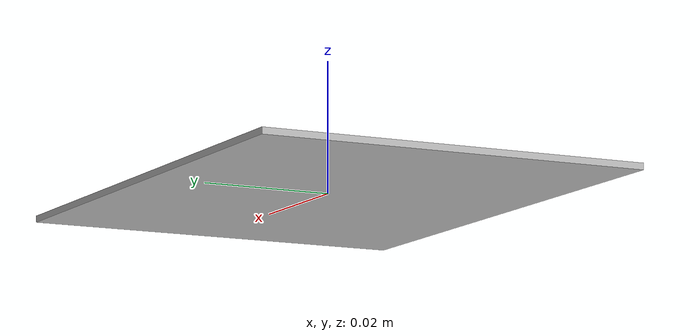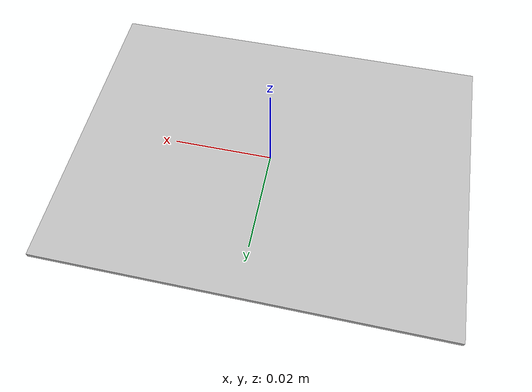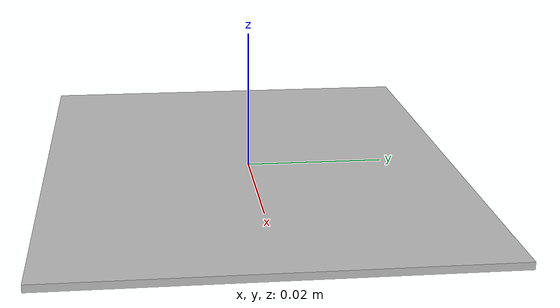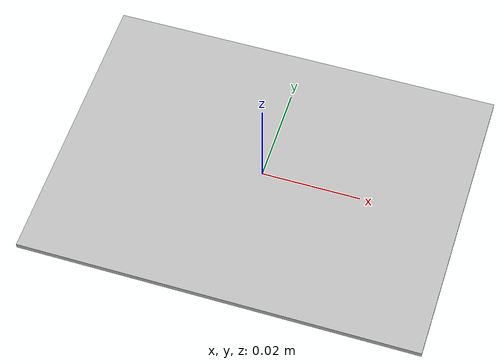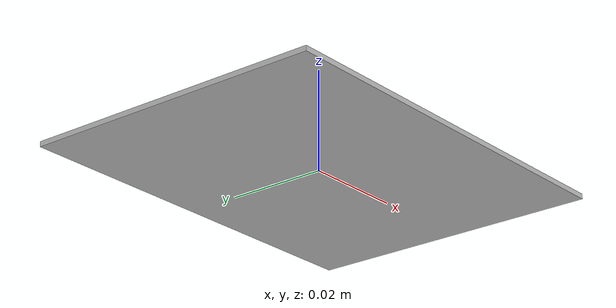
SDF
<?xml version="1.0"?>
<sdf version="1.9">
  <model name="MARKER_NAME">
    <static>true</static>
    <link name="link">
      <visual name="visual">
        <geometry>
          <box><size>0.08 0.06 0.001</size></box>
        </geometry>
        <material>
          <ambient>MARKER_COLOR</ambient>
          <diffuse>MARKER_COLOR</diffuse>
          <emissive>MARKER_EMISSIVE</emissive>
        </material>
      </visual>
      <!-- No collision — visual marker only -->
    </link>
  </model>
</sdf>
